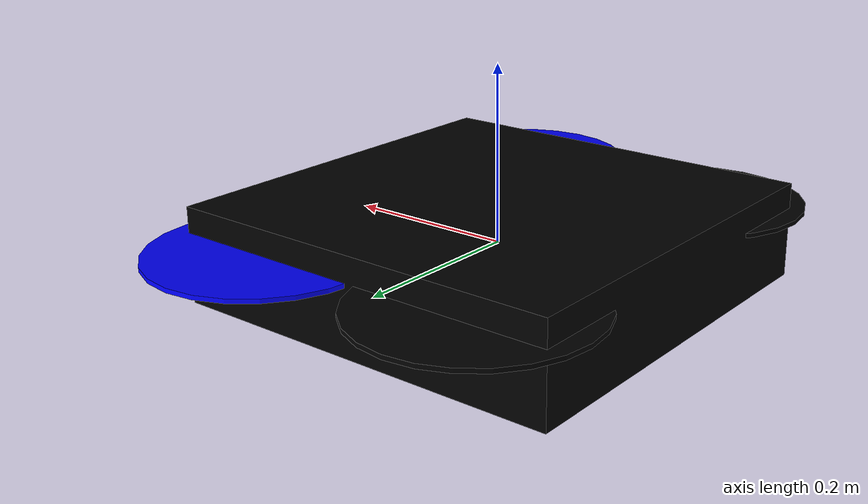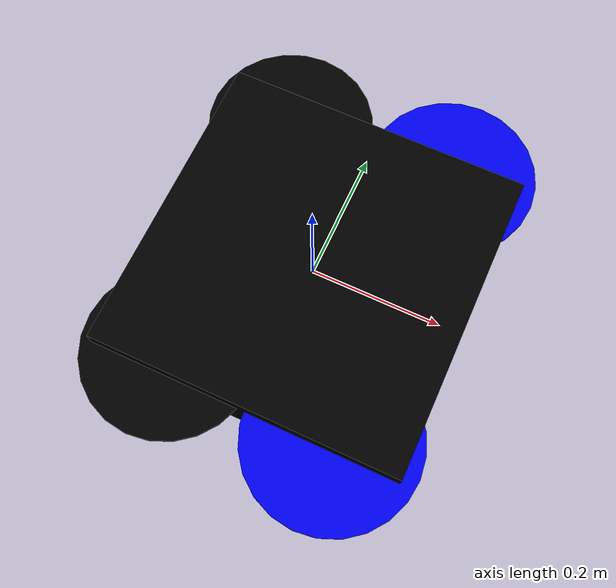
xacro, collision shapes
<robot name="iris" xmlns:xacro="http://www.ros.org/wiki/xacro">
  <xacro:arg name='mavlink_udp_port' default='14560' />
  <xacro:arg name='mavlink_tcp_port' default='4560' />
  <xacro:arg name='qgc_udp_port' default='4560' />
  <xacro:arg name='enable_camera' default='true' />
  <xacro:arg name='camera_pose' default='0 0 0 0 0 0' />
  <xacro:arg name='camera_udp_port' default='5600' />
  <xacro:arg name='rotors_description_dir' default='.'/>
  <xacro:arg name='vehicle_name' default='iris'/>
    <link name='$(arg vehicle_name)_base_link'>
      <pose rpy="0  0  0" xyz="0  0  0"/>
      <inertial>
        <mass value="1.5"/>
        <origin rpy="0  0  0" xyz="0  0  0"/>
        <inertia ixx="0.0347563" ixy="0" ixz="0" iyy="0.0458929" iyz="0" izz="0.0977"/>
      </inertial>
      <collision name="$(arg vehicle_name)_base_link_inertia_collision">
        <origin rpy="0  0  0" xyz="0  0  0"/>
        <geometry>
          <box size="0.47 0.47 0.11"/>
        </geometry>
      </collision>
      <visual name="$(arg vehicle_name)_base_link_inertia_visual">
        <origin rpy="0  0  0" xyz="0  0  0"/>
        <geometry>
          <mesh filename="package://mavlink_sitl_gazebo/models/rotors_description/meshes/iris.stl" scale="1 1 1"/>
        </geometry>
        <material name="Gazebo/Black">
          <color rgba="0. 0. 0. 1"/>
        </material>
      </visual>
    </link>
    <gazebo reference="$(arg vehicle_name)_base_link">
      <material>Gazebo/Black</material>
      <gravity>1</gravity>
      <velocity_decay/>
      <self_collide>0</self_collide>
    </gazebo>
    <link name='$(arg vehicle_name)_imu_link'>
      <pose rpy="0  0  0" xyz="0  0  0"/>
      <inertial>
        <mass value="0.015"/>
        <origin rpy="0  0  0" xyz="0  0  0"/>
        <inertia ixx="1e-05" ixy="0" ixz="0" iyy="1e-05" iyz="0" izz="1e-05"/>
      </inertial>
    </link>
    <joint name='$(arg vehicle_name)_imu_joint' type='revolute'>
      <parent link="$(arg vehicle_name)_base_link"/>
      <child link="$(arg vehicle_name)_imu_link"/>
      <origin rpy="0  0  0" xyz="0  0  0"/>
      <axis xyz="1  0  0"/>
      <limit effort="0.0" lower="0.0" upper="0.0" velocity="0.0"/>
    </joint>
    <link name='$(arg vehicle_name)_rotor_0'>
      <pose rpy="0.13 -0.22" xyz="0.023 0 -0 0"/>
      <inertial>
        <mass value="0.005"/>
        <origin rpy="0  0  0" xyz="0  0  0"/>
        <inertia ixx="9.75e-07" ixy="0" ixz="0" iyy="0.000273104" iyz="0" izz="0.000274004"/>
      </inertial>
      <collision name="$(arg vehicle_name)_rotor_0_collision">
        <origin rpy="0  0  0" xyz="0  0  0"/>
        <geometry>
          <cylinder length="0.005" radius="0.128"/>
        </geometry>
      </collision>
      <visual name="$(arg vehicle_name)_rotor_0_visual">
        <origin rpy="0  0  0" xyz="0  0  0"/>
        <geometry>
          <mesh filename="package://mavlink_sitl_gazebo/models/tiltrotor/meshes/iris_prop_ccw.dae" scale="1 1 1"/>
        </geometry>
        <material name="Gazebo/Blue">
          <color rgba="0. 0. 1. 1"/>
        </material>
      </visual>
    </link>
    <gazebo reference="$(arg vehicle_name)_rotor_0">
      <material>Gazebo/Blue</material>
      <gravity>1</gravity>
      <velocity_decay/>
      <self_collide>0</self_collide>
    </gazebo>
    <joint name="$(arg vehicle_name)_rotor_0_joint" type="revolute">
      <parent link="$(arg vehicle_name)_base_link"/>
      <child link="$(arg vehicle_name)_rotor_0"/>
      <origin rpy="0  0  0" xyz="0.13  -0.22   0.023"/>
      <axis xyz="0  0  1"/>
      <limit effort="0.0" lower="-1e+16" upper="1e+16" velocity="0.0"/>
    </joint>
    <link name='$(arg vehicle_name)_rotor_1'>
      <pose rpy="-0.13 0.2" xyz="0.023 0 -0 0"/>
      <inertial>
        <mass value="0.005"/>
        <origin rpy="0  0  0" xyz="0  0  0"/>
        <inertia ixx="9.75e-07" ixy="0" ixz="0" iyy="0.000273104" iyz="0" izz="0.000274004"/>
      </inertial>
      <collision name="$(arg vehicle_name)_rotor_1_collision">
        <origin rpy="0  0  0" xyz="0  0  0"/>
        <geometry>
          <cylinder length="0.005" radius="0.128"/>
        </geometry>
      </collision>
      <visual name="$(arg vehicle_name)_rotor_1_visual">
        <origin rpy="0  0  0" xyz="0  0  0"/>
        <geometry>
          <mesh filename="package://mavlink_sitl_gazebo/models/tiltrotor/meshes/iris_prop_ccw.dae" scale="1 1 1"/>
        </geometry>
        <material name="Gazebo/Black">
          <color rgba="0. 0. 0. 1"/>
        </material>
      </visual>
    </link>
    <gazebo reference="$(arg vehicle_name)_rotor_1">
      <material>Gazebo/Black</material>
      <gravity>1</gravity>
      <velocity_decay/>
      <self_collide>0</self_collide>
    </gazebo>
    <joint name="$(arg vehicle_name)_rotor_1_joint" type="revolute">
      <parent link="$(arg vehicle_name)_base_link"/>
      <child link="$(arg vehicle_name)_rotor_1"/>
      <origin rpy="0  0  0" xyz="-0.13   0.2    0.023"/>
      <axis xyz="0  0  1"/>
      <limit effort="0.0" lower="-1e+16" upper="1e+16" velocity="0.0"/>
    </joint>
    <link name='$(arg vehicle_name)_rotor_2'>
      <pose rpy="0.13 0.2" xyz="0.023 0 -0 0"/>
      <inertial>
        <mass value="0.005"/>
        <origin rpy="0  0  0" xyz="0  0  0"/>
        <inertia ixx="9.75e-07" ixy="0" ixz="0" iyy="0.000273104" iyz="0" izz="0.000274004"/>
      </inertial>
      <collision name="$(arg vehicle_name)_rotor_2_collision">
        <origin rpy="0  0  0" xyz="0  0  0"/>
        <geometry>
          <cylinder length="0.005" radius="0.128"/>
        </geometry>
      </collision>
      <visual name="$(arg vehicle_name)_rotor_2_visual">
        <origin rpy="0  0  0" xyz="0  0  0"/>
        <geometry>
          <mesh filename="package://mavlink_sitl_gazebo/models/tiltrotor/meshes/iris_prop_cw.dae" scale="1 1 1"/>
        </geometry>
        <material name="Gazebo/Blue">
          <color rgba="0. 0. 1. 1"/>
        </material>
      </visual>
    </link>
    <gazebo reference="$(arg vehicle_name)_rotor_2">
      <material>Gazebo/Blue</material>
      <gravity>1</gravity>
      <velocity_decay/>
      <self_collide>0</self_collide>
    </gazebo>
    <joint name="$(arg vehicle_name)_rotor_2_joint" type="revolute">
      <parent link="$(arg vehicle_name)_base_link"/>
      <child link="$(arg vehicle_name)_rotor_2"/>
      <origin rpy="0  0  0" xyz="0.13   0.22   0.023"/>
      <axis xyz="0  0  1"/>
      <limit effort="0.0" lower="-1e+16" upper="1e+16" velocity="0.0"/>
    </joint>
    <link name='$(arg vehicle_name)_rotor_3'>
      <pose rpy="-0.13 -0.2" xyz="0.023 0 -0 0"/>
      <inertial>
        <mass value="0.005"/>
        <origin rpy="0  0  0" xyz="0  0  0"/>
        <inertia ixx="9.75e-07" ixy="0" ixz="0" iyy="0.000273104" iyz="0" izz="0.000274004"/>
      </inertial>
      <collision name="$(arg vehicle_name)_rotor_3_collision">
        <origin rpy="0  0  0" xyz="0  0  0"/>
        <geometry>
          <cylinder length="0.005" radius="0.128"/>
        </geometry>
      </collision>
      <visual name="$(arg vehicle_name)_rotor_3_visual">
        <origin rpy="0  0  0" xyz="0  0  0"/>
        <geometry>
          <mesh filename="package://mavlink_sitl_gazebo/models/tiltrotor/meshes/iris_prop_cw.dae" scale="1 1 1"/>
        </geometry>
        <material name="Gazebo/Black">
          <color rgba="0. 0. 0. 1"/>
        </material>
      </visual>
    </link>
    <gazebo reference="$(arg vehicle_name)_rotor_3">
      <material>Gazebo/Black</material>
      <gravity>1</gravity>
      <velocity_decay/>
      <self_collide>0</self_collide>
    </gazebo>
    <joint name="$(arg vehicle_name)_rotor_3_joint" type="revolute">
      <parent link="$(arg vehicle_name)_base_link"/>
      <child link="$(arg vehicle_name)_rotor_3"/>
      <origin rpy="0  0  0" xyz="-0.13  -0.2    0.023"/>
      <axis xyz="0  0  1"/>
      <limit effort="0.0" lower="-1e+16" upper="1e+16" velocity="0.0"/>
    </joint>

<gazebo>
    <plugin name='multirobot_base_plugin' filename='libgazebo_multirotor_base_plugin.so'>
      <robotNamespace/>
      <linkName>$(arg vehicle_name)_base_link</linkName>
      <rotorVelocitySlowdownSim>10</rotorVelocitySlowdownSim>
    </plugin>
    <plugin name='front_right_motor_model' filename='libgazebo_motor_model.so'>
      <robotNamespace/>
      <jointName>$(arg vehicle_name)_rotor_0_joint</jointName>
      <linkName>$(arg vehicle_name)_rotor_0</linkName>
      <turningDirection>ccw</turningDirection>
      <timeConstantUp>0.0125</timeConstantUp>
      <timeConstantDown>0.025</timeConstantDown>
      <maxRotVelocity>1100</maxRotVelocity>
      <motorConstant>8.54858e-06</motorConstant>
      <momentConstant>0.06</momentConstant>
      <commandSubTopic>/gazebo/command/motor_speed</commandSubTopic>
      <motorNumber>0</motorNumber>
      <rotorDragCoefficient>0.000806428</rotorDragCoefficient>
      <rollingMomentCoefficient>1e-06</rollingMomentCoefficient>
      <motorSpeedPubTopic>/motor_speed/0</motorSpeedPubTopic>
      <rotorVelocitySlowdownSim>10</rotorVelocitySlowdownSim>
    </plugin>
    <plugin name='back_left_motor_model' filename='libgazebo_motor_model.so'>
      <robotNamespace/>
      <jointName>$(arg vehicle_name)_rotor_1_joint</jointName>
      <linkName>$(arg vehicle_name)_rotor_1</linkName>
      <turningDirection>ccw</turningDirection>
      <timeConstantUp>0.0125</timeConstantUp>
      <timeConstantDown>0.025</timeConstantDown>
      <maxRotVelocity>1100</maxRotVelocity>
      <motorConstant>8.54858e-06</motorConstant>
      <momentConstant>0.06</momentConstant>
      <commandSubTopic>/gazebo/command/motor_speed</commandSubTopic>
      <motorNumber>1</motorNumber>
      <rotorDragCoefficient>0.000806428</rotorDragCoefficient>
      <rollingMomentCoefficient>1e-06</rollingMomentCoefficient>
      <motorSpeedPubTopic>/motor_speed/1</motorSpeedPubTopic>
      <rotorVelocitySlowdownSim>10</rotorVelocitySlowdownSim>
    </plugin>
    <plugin name='front_left_motor_model' filename='libgazebo_motor_model.so'>
      <robotNamespace/>
      <jointName>$(arg vehicle_name)_rotor_2_joint</jointName>
      <linkName>$(arg vehicle_name)_rotor_2</linkName>
      <turningDirection>cw</turningDirection>
      <timeConstantUp>0.0125</timeConstantUp>
      <timeConstantDown>0.025</timeConstantDown>
      <maxRotVelocity>1100</maxRotVelocity>
      <motorConstant>8.54858e-06</motorConstant>
      <momentConstant>0.06</momentConstant>
      <commandSubTopic>/gazebo/command/motor_speed</commandSubTopic>
      <motorNumber>2</motorNumber>
      <rotorDragCoefficient>0.000806428</rotorDragCoefficient>
      <rollingMomentCoefficient>1e-06</rollingMomentCoefficient>
      <motorSpeedPubTopic>/motor_speed/2</motorSpeedPubTopic>
      <rotorVelocitySlowdownSim>10</rotorVelocitySlowdownSim>
    </plugin>
    <plugin name='back_right_motor_model' filename='libgazebo_motor_model.so'>
      <robotNamespace/>
      <jointName>$(arg vehicle_name)_rotor_3_joint</jointName>
      <linkName>$(arg vehicle_name)_rotor_3</linkName>
      <turningDirection>cw</turningDirection>
      <timeConstantUp>0.0125</timeConstantUp>
      <timeConstantDown>0.025</timeConstantDown>
      <maxRotVelocity>1100</maxRotVelocity>
      <motorConstant>8.54858e-06</motorConstant>
      <momentConstant>0.06</momentConstant>
      <commandSubTopic>/gazebo/command/motor_speed</commandSubTopic>
      <motorNumber>3</motorNumber>
      <rotorDragCoefficient>0.000806428</rotorDragCoefficient>
      <rollingMomentCoefficient>1e-06</rollingMomentCoefficient>
      <motorSpeedPubTopic>/motor_speed/3</motorSpeedPubTopic>
      <rotorVelocitySlowdownSim>10</rotorVelocitySlowdownSim>
    </plugin>
    <plugin name='gps_plugin' filename='libgazebo_gps_plugin.so'>
      <robotNamespace/>
      <gpsNoise>1</gpsNoise>
    </plugin>
    <plugin name='magnetometer_plugin' filename='libgazebo_magnetometer_plugin.so'>
      <robotNamespace/>
      <pubRate>20</pubRate>
      <noiseDensity>0.0004</noiseDensity>
      <randomWalk>6.4e-06</randomWalk>
      <biasCorrelationTime>600</biasCorrelationTime>
      <magTopic>/mag</magTopic>
    </plugin>
    <plugin name='barometer_plugin' filename='libgazebo_barometer_plugin.so'>
      <robotNamespace/>
      <pubRate>10</pubRate>
      <baroTopic>/baro</baroTopic>
    </plugin>
    <plugin name='mavlink_interface' filename='libgazebo_mavlink_interface.so'>
      <robotNamespace/>
      <imuSubTopic>/imu</imuSubTopic>
      <gpsSubTopic>/gps</gpsSubTopic>
      <magSubTopic>/mag</magSubTopic>
      <baroSubTopic>/baro</baroSubTopic>
      <mavlink_addr>INADDR_ANY</mavlink_addr>
      <mavlink_udp_port>$(arg mavlink_udp_port)</mavlink_udp_port>
      <mavlink_tcp_port>$(arg mavlink_tcp_port)</mavlink_tcp_port>
      <serialEnabled>false</serialEnabled>
      <serialDevice>/dev/ttyACM0</serialDevice>
      <baudRate>921600</baudRate>
      <qgc_addr>INADDR_ANY</qgc_addr>
      <qgc_udp_port>$(arg qgc_udp_port)</qgc_udp_port>
      <hil_mode>false</hil_mode>
      <hil_state_level>false</hil_state_level>
      <vehicle_is_tailsitter>false</vehicle_is_tailsitter>
      <send_vision_estimation>false</send_vision_estimation>
      <send_odometry>false</send_odometry>
      <enable_lockstep>true</enable_lockstep>
      <use_tcp>true</use_tcp>
      <motorSpeedCommandPubTopic>/gazebo/command/motor_speed</motorSpeedCommandPubTopic>
      <control_channels>
        <channel name='rotor1'>
          <input_index>0</input_index>
          <input_offset>0</input_offset>
          <input_scaling>1000</input_scaling>
          <zero_position_disarmed>0</zero_position_disarmed>
          <zero_position_armed>100</zero_position_armed>
          <joint_control_type>velocity</joint_control_type>
        </channel>
        <channel name='rotor2'>
          <input_index>1</input_index>
          <input_offset>0</input_offset>
          <input_scaling>1000</input_scaling>
          <zero_position_disarmed>0</zero_position_disarmed>
          <zero_position_armed>100</zero_position_armed>
          <joint_control_type>velocity</joint_control_type>
        </channel>
        <channel name='rotor3'>
          <input_index>2</input_index>
          <input_offset>0</input_offset>
          <input_scaling>1000</input_scaling>
          <zero_position_disarmed>0</zero_position_disarmed>
          <zero_position_armed>100</zero_position_armed>
          <joint_control_type>velocity</joint_control_type>
        </channel>
        <channel name='rotor4'>
          <input_index>3</input_index>
          <input_offset>0</input_offset>
          <input_scaling>1000</input_scaling>
          <zero_position_disarmed>0</zero_position_disarmed>
          <zero_position_armed>100</zero_position_armed>
          <joint_control_type>velocity</joint_control_type>
        </channel>
        <channel name='rotor5'>
          <input_index>4</input_index>
          <input_offset>1</input_offset>
          <input_scaling>324.6</input_scaling>
          <zero_position_disarmed>0</zero_position_disarmed>
          <zero_position_armed>0</zero_position_armed>
          <joint_control_type>velocity</joint_control_type>
          <joint_control_pid>
            <p>0.1</p>
            <i>0</i>
            <d>0</d>
            <iMax>0.0</iMax>
            <iMin>0.0</iMin>
            <cmdMax>2</cmdMax>
            <cmdMin>-2</cmdMin>
          </joint_control_pid>
          <joint_name>zephyr_delta_wing::propeller_joint</joint_name>
        </channel>
        <channel name='rotor6'>
          <input_index>5</input_index>
          <input_offset>0</input_offset>
          <input_scaling>0.524</input_scaling>
          <zero_position_disarmed>0</zero_position_disarmed>
          <zero_position_armed>0</zero_position_armed>
          <joint_control_type>position</joint_control_type>
          <joint_name>zephyr_delta_wing::flap_left_joint</joint_name>
          <joint_control_pid>
            <p>10.0</p>
            <i>0</i>
            <d>0</d>
            <iMax>0</iMax>
            <iMin>0</iMin>
            <cmdMax>20</cmdMax>
            <cmdMin>-20</cmdMin>
          </joint_control_pid>
        </channel>
        <channel name='rotor7'>
          <input_index>6</input_index>
          <input_offset>0</input_offset>
          <input_scaling>0.524</input_scaling>
          <zero_position_disarmed>0</zero_position_disarmed>
          <zero_position_armed>0</zero_position_armed>
          <joint_control_type>position</joint_control_type>
          <joint_name>zephyr_delta_wing::flap_right_joint</joint_name>
          <joint_control_pid>
            <p>10.0</p>
            <i>0</i>
            <d>0</d>
            <iMax>0</iMax>
            <iMin>0</iMin>
            <cmdMax>20</cmdMax>
            <cmdMin>-20</cmdMin>
          </joint_control_pid>
        </channel>
        <channel name='rotor8'>
          <input_index>7</input_index>
          <input_offset>0</input_offset>
          <input_scaling>0.524</input_scaling>
          <zero_position_disarmed>0</zero_position_disarmed>
          <zero_position_armed>0</zero_position_armed>
          <joint_control_type>position</joint_control_type>
        </channel>
      </control_channels>
    </plugin>
    <static>0</static>
    <plugin name="joint_state_publisher" filename="libgazebo_ros_joint_state_publisher.so">
      <joint_name>$(arg vehicle_name)::$(arg vehicle_name)_imu_joint</joint_name>
      <joint_name>$(arg vehicle_name)::$(arg vehicle_name)_rotor_0_joint</joint_name>
      <joint_name>$(arg vehicle_name)::$(arg vehicle_name)_rotor_1_joint</joint_name>
      <joint_name>$(arg vehicle_name)::$(arg vehicle_name)_rotor_2_joint</joint_name>
      <joint_name>$(arg vehicle_name)::$(arg vehicle_name)_rotor_3_joint</joint_name>
      <update_rate>100</update_rate>
    </plugin>
    <plugin name='rotors_gazebo_imu_plugin' filename='libgazebo_imu_plugin.so'>
      <robotNamespace/>
      <linkName>$(arg vehicle_name)_imu_link</linkName>
      <imuTopic>/imu</imuTopic>
      <gyroscopeNoiseDensity>0.0003394</gyroscopeNoiseDensity>
      <gyroscopeRandomWalk>3.8785e-05</gyroscopeRandomWalk>
      <gyroscopeBiasCorrelationTime>1000.0</gyroscopeBiasCorrelationTime>
      <gyroscopeTurnOnBiasSigma>0.0087</gyroscopeTurnOnBiasSigma>
      <accelerometerNoiseDensity>0.004</accelerometerNoiseDensity>
      <accelerometerRandomWalk>0.006</accelerometerRandomWalk>
      <accelerometerBiasCorrelationTime>300.0</accelerometerBiasCorrelationTime>
      <accelerometerTurnOnBiasSigma>0.196</accelerometerTurnOnBiasSigma>
    </plugin>
  </gazebo>

  <xacro:if value="$(arg enable_camera)">
    <xacro:include filename="$(arg rotors_description_dir)/fpv_cam/fpv_cam.urdf.xacro">
    </xacro:include>
    <xacro:fpv_cam/>
    <joint name="fpv_joint" type="fixed">
      <parent link="$(arg vehicle_name)_base_link"/>
      <child link="camera_link"/>
      <origin rpy="0  0  0" xyz="0  0  0"/>
      <axis xyz="0  0  1"/>
      <limit effort="0.0" lower="0.0" upper="0.0" velocity="0.0"/>
    </joint>
  </xacro:if>
</robot>

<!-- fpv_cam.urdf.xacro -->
<robot xmlns:xacro="http://ros.org/wiki/xacro">
  <xacro:arg name='camera_udp_port' default='5600' />
  <xacro:arg name='camera_pose' default='-0.158979 -0.04405 0.045074 0 -0 0'/>
  <xacro:macro name="fpv_cam">
    <link name='camera_link'>
      <pose rpy="0  0  0" xyz="0  0  0"/>
      <inertial>
        <mass value="0.015"/>
        <origin rpy="0  0  0" xyz="0  0  0"/>
        <inertia ixx="4.15e-6" ixy="0" ixz="0" iyy="2.407e-6" iyz="0" izz="2.407e-6"/>
      </inertial>
      <collision name="camera_link_inertia_collision">
        <origin rpy="0  0  0" xyz="0  0  0"/>
        <geometry>
          <box size="0.01 0.01 0.01"/>
        </geometry>
      </collision>
      <visual name="camera_link_inertia_visual">
        <origin rpy="0  0  0" xyz="0  0  0"/>
        <geometry>
          <box size="0.01 0.01 0.01"/>
        </geometry>
      </visual>
    </link>
    <gazebo reference="camera_link">
      <self_collide>0</self_collide>
      <kinematic>0</kinematic>
      <sensor name='camera' type='camera'>
        <camera name='__default__'>
          <horizontal_fov>1.047</horizontal_fov>
          <image>
            <width>320</width>
            <height>240</height>
          </image>
          <clip>
            <near>0.1</near>
            <far>15000</far>
          </clip>
          <lens>
            <type>custom</type>
            <custom_function>
              <c1>1.05</c1>
              <c2>4</c2>
              <f>1</f>
              <fun>tan</fun>
            </custom_function>
            <scale_to_hfov>1</scale_to_hfov>
            <cutoff_angle>3.1415</cutoff_angle>
            <env_texture_size>1080</env_texture_size>
          </lens>
        </camera>
        <always_on>1</always_on>
        <update_rate>30</update_rate>
        <visualize>1</visualize>
        <plugin name='camera_plugin' filename='libgazebo_ros_camera.so'>
            <robotNamespace></robotNamespace>
          <alwaysOn>true</alwaysOn>
          <imageTopicName>image_raw</imageTopicName>
          <cameraInfoTopicName>camera_info</cameraInfoTopicName>
          <updateRate>30.0</updateRate>
          <cameraName>usb_cam</cameraName>
          <frameName>/robot_camera_link</frameName>
          <CxPrime>320.5</CxPrime>
          <Cx>320.5</Cx>
          <Cy>240.5</Cy>
          <hackBaseline>0</hackBaseline>
          <focalLength>277.191356</focalLength>
          <distortionK1>0.0</distortionK1>
          <distortionK2>0.0</distortionK2>
          <distortionK3>0.0</distortionK3>
          <distortionT1>0.0</distortionT1>
          <distortionT2>0.0</distortionT2>
        </plugin>
        <!-- GStreamer camera plugin (needs a lot of CPU! Consider lowering the
           camera image size) -->
        <plugin name="GstCameraPlugin" filename="libgazebo_gst_camera_plugin.so">
          <robotNamespace></robotNamespace>
          <udpPort>$(arg camera_udp_port)</udpPort>
        </plugin>
      </sensor>
    </gazebo>
    </xacro:macro>
  </robot>
